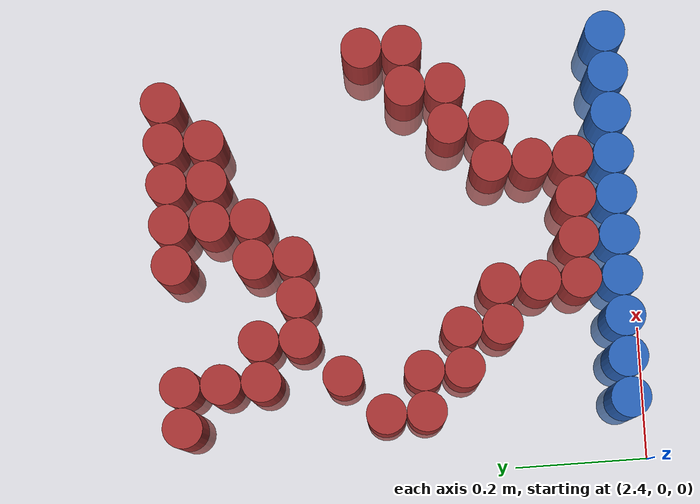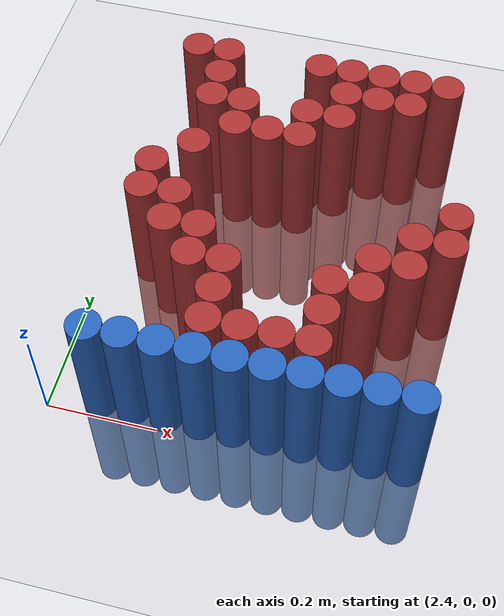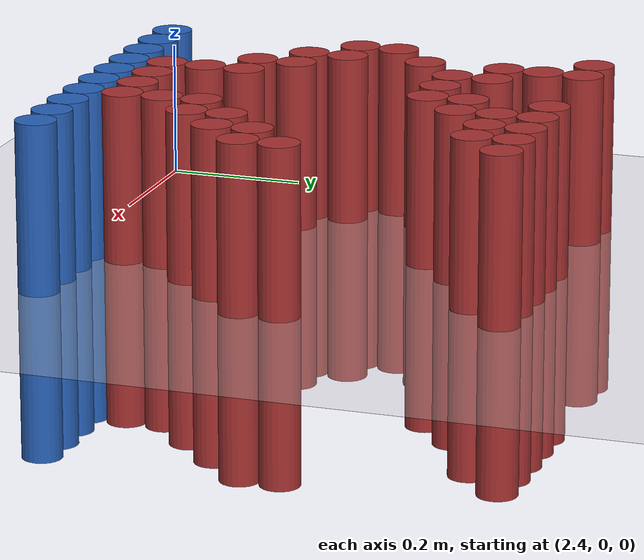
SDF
<sdf version="1.6">
 <world name="default">
  <model name="ground_plane">
   <static>1</static>
   <link name="link">
    <collision name="collision">
     <geometry><plane><normal>0 0 1</normal><size>100 100</size></plane></geometry>
     <surface><friction><ode><mu>100</mu><mu2>50</mu2></ode></friction></surface>
    </collision>
    <visual name="visual">
     <cast_shadows>0</cast_shadows>
     <geometry><plane><normal>0 0 1</normal><size>100 100</size></plane></geometry>
     <material>
      <script><uri>file://media/materials/scripts/gazebo.material</uri><name>Gazebo/Grey</name></script>
     </material>
    </visual>
   </link>
  </model>
  <model name="unit_cylinder_216">
   <static>1</static>
   <pose>2.490000 0.690000 0.000000 0.000000 0.000000 0.000000</pose>
   <link name="link">
    <inertial>
     <mass>1</mass>
     <inertia><ixx>0.145833</ixx><ixy>0</ixy><ixz>0</ixz><iyy>0.145833</iyy><iyz>0</iyz><izz>0.125</izz></inertia>
    </inertial>
    <collision name="collision">
     <geometry><cylinder><radius>0.030000</radius><length>0.5</length></cylinder></geometry>
    </collision>
    <visual name="visual">
     <geometry><cylinder><radius>0.030000</radius><length>0.5</length></cylinder></geometry>
     <material>
      <ambient>0.648000 0.192000 0.192000 1</ambient>
      <diffuse>0.648000 0.192000 0.192000 1</diffuse>
     </material>
     <material>
      <script><name>Gazebo/Grey</name><uri>file://media/materials/scripts/gazebo.material</uri></script>
     </material>
    </visual>
   </link>
  </model>
  <model name="unit_cylinder_217">
   <static>1</static>
   <pose>2.550000 0.690000 0.000000 0.000000 0.000000 0.000000</pose>
   <link name="link">
    <inertial>
     <mass>1</mass>
     <inertia><ixx>0.145833</ixx><ixy>0</ixy><ixz>0</ixz><iyy>0.145833</iyy><iyz>0</iyz><izz>0.125</izz></inertia>
    </inertial>
    <collision name="collision">
     <geometry><cylinder><radius>0.030000</radius><length>0.5</length></cylinder></geometry>
    </collision>
    <visual name="visual">
     <geometry><cylinder><radius>0.030000</radius><length>0.5</length></cylinder></geometry>
     <material>
      <ambient>0.648000 0.192000 0.192000 1</ambient>
      <diffuse>0.648000 0.192000 0.192000 1</diffuse>
     </material>
     <material>
      <script><name>Gazebo/Grey</name><uri>file://media/materials/scripts/gazebo.material</uri></script>
     </material>
    </visual>
   </link>
  </model>
  <model name="unit_cylinder_218">
   <static>1</static>
   <pose>2.730000 0.690000 0.000000 0.000000 0.000000 0.000000</pose>
   <link name="link">
    <inertial>
     <mass>1</mass>
     <inertia><ixx>0.145833</ixx><ixy>0</ixy><ixz>0</ixz><iyy>0.145833</iyy><iyz>0</iyz><izz>0.125</izz></inertia>
    </inertial>
    <collision name="collision">
     <geometry><cylinder><radius>0.030000</radius><length>0.5</length></cylinder></geometry>
    </collision>
    <visual name="visual">
     <geometry><cylinder><radius>0.030000</radius><length>0.5</length></cylinder></geometry>
     <material>
      <ambient>0.648000 0.192000 0.192000 1</ambient>
      <diffuse>0.648000 0.192000 0.192000 1</diffuse>
     </material>
     <material>
      <script><name>Gazebo/Grey</name><uri>file://media/materials/scripts/gazebo.material</uri></script>
     </material>
    </visual>
   </link>
  </model>
  <model name="unit_cylinder_219">
   <static>1</static>
   <pose>2.790000 0.690000 0.000000 0.000000 0.000000 0.000000</pose>
   <link name="link">
    <inertial>
     <mass>1</mass>
     <inertia><ixx>0.145833</ixx><ixy>0</ixy><ixz>0</ixz><iyy>0.145833</iyy><iyz>0</iyz><izz>0.125</izz></inertia>
    </inertial>
    <collision name="collision">
     <geometry><cylinder><radius>0.030000</radius><length>0.5</length></cylinder></geometry>
    </collision>
    <visual name="visual">
     <geometry><cylinder><radius>0.030000</radius><length>0.5</length></cylinder></geometry>
     <material>
      <ambient>0.648000 0.192000 0.192000 1</ambient>
      <diffuse>0.648000 0.192000 0.192000 1</diffuse>
     </material>
     <material>
      <script><name>Gazebo/Grey</name><uri>file://media/materials/scripts/gazebo.material</uri></script>
     </material>
    </visual>
   </link>
  </model>
  <model name="unit_cylinder_220">
   <static>1</static>
   <pose>2.850000 0.690000 0.000000 0.000000 0.000000 0.000000</pose>
   <link name="link">
    <inertial>
     <mass>1</mass>
     <inertia><ixx>0.145833</ixx><ixy>0</ixy><ixz>0</ixz><iyy>0.145833</iyy><iyz>0</iyz><izz>0.125</izz></inertia>
    </inertial>
    <collision name="collision">
     <geometry><cylinder><radius>0.030000</radius><length>0.5</length></cylinder></geometry>
    </collision>
    <visual name="visual">
     <geometry><cylinder><radius>0.030000</radius><length>0.5</length></cylinder></geometry>
     <material>
      <ambient>0.648000 0.192000 0.192000 1</ambient>
      <diffuse>0.648000 0.192000 0.192000 1</diffuse>
     </material>
     <material>
      <script><name>Gazebo/Grey</name><uri>file://media/materials/scripts/gazebo.material</uri></script>
     </material>
    </visual>
   </link>
  </model>
  <model name="unit_cylinder_221">
   <static>1</static>
   <pose>2.910000 0.690000 0.000000 0.000000 0.000000 0.000000</pose>
   <link name="link">
    <inertial>
     <mass>1</mass>
     <inertia><ixx>0.145833</ixx><ixy>0</ixy><ixz>0</ixz><iyy>0.145833</iyy><iyz>0</iyz><izz>0.125</izz></inertia>
    </inertial>
    <collision name="collision">
     <geometry><cylinder><radius>0.030000</radius><length>0.5</length></cylinder></geometry>
    </collision>
    <visual name="visual">
     <geometry><cylinder><radius>0.030000</radius><length>0.5</length></cylinder></geometry>
     <material>
      <ambient>0.648000 0.192000 0.192000 1</ambient>
      <diffuse>0.648000 0.192000 0.192000 1</diffuse>
     </material>
     <material>
      <script><name>Gazebo/Grey</name><uri>file://media/materials/scripts/gazebo.material</uri></script>
     </material>
    </visual>
   </link>
  </model>
  <model name="unit_cylinder_222">
   <static>1</static>
   <pose>2.970000 0.690000 0.000000 0.000000 0.000000 0.000000</pose>
   <link name="link">
    <inertial>
     <mass>1</mass>
     <inertia><ixx>0.145833</ixx><ixy>0</ixy><ixz>0</ixz><iyy>0.145833</iyy><iyz>0</iyz><izz>0.125</izz></inertia>
    </inertial>
    <collision name="collision">
     <geometry><cylinder><radius>0.030000</radius><length>0.5</length></cylinder></geometry>
    </collision>
    <visual name="visual">
     <geometry><cylinder><radius>0.030000</radius><length>0.5</length></cylinder></geometry>
     <material>
      <ambient>0.648000 0.192000 0.192000 1</ambient>
      <diffuse>0.648000 0.192000 0.192000 1</diffuse>
     </material>
     <material>
      <script><name>Gazebo/Grey</name><uri>file://media/materials/scripts/gazebo.material</uri></script>
     </material>
    </visual>
   </link>
  </model>
  <model name="unit_cylinder_226">
   <static>1</static>
   <pose>2.550000 0.630000 0.000000 0.000000 0.000000 0.000000</pose>
   <link name="link">
    <inertial>
     <mass>1</mass>
     <inertia><ixx>0.145833</ixx><ixy>0</ixy><ixz>0</ixz><iyy>0.145833</iyy><iyz>0</iyz><izz>0.125</izz></inertia>
    </inertial>
    <collision name="collision">
     <geometry><cylinder><radius>0.030000</radius><length>0.5</length></cylinder></geometry>
    </collision>
    <visual name="visual">
     <geometry><cylinder><radius>0.030000</radius><length>0.5</length></cylinder></geometry>
     <material>
      <ambient>0.648000 0.192000 0.192000 1</ambient>
      <diffuse>0.648000 0.192000 0.192000 1</diffuse>
     </material>
     <material>
      <script><name>Gazebo/Grey</name><uri>file://media/materials/scripts/gazebo.material</uri></script>
     </material>
    </visual>
   </link>
  </model>
  <model name="unit_cylinder_227">
   <static>1</static>
   <pose>2.790000 0.630000 0.000000 0.000000 0.000000 0.000000</pose>
   <link name="link">
    <inertial>
     <mass>1</mass>
     <inertia><ixx>0.145833</ixx><ixy>0</ixy><ixz>0</ixz><iyy>0.145833</iyy><iyz>0</iyz><izz>0.125</izz></inertia>
    </inertial>
    <collision name="collision">
     <geometry><cylinder><radius>0.030000</radius><length>0.5</length></cylinder></geometry>
    </collision>
    <visual name="visual">
     <geometry><cylinder><radius>0.030000</radius><length>0.5</length></cylinder></geometry>
     <material>
      <ambient>0.648000 0.192000 0.192000 1</ambient>
      <diffuse>0.648000 0.192000 0.192000 1</diffuse>
     </material>
     <material>
      <script><name>Gazebo/Grey</name><uri>file://media/materials/scripts/gazebo.material</uri></script>
     </material>
    </visual>
   </link>
  </model>
  <model name="unit_cylinder_228">
   <static>1</static>
   <pose>2.850000 0.630000 0.000000 0.000000 0.000000 0.000000</pose>
   <link name="link">
    <inertial>
     <mass>1</mass>
     <inertia><ixx>0.145833</ixx><ixy>0</ixy><ixz>0</ixz><iyy>0.145833</iyy><iyz>0</iyz><izz>0.125</izz></inertia>
    </inertial>
    <collision name="collision">
     <geometry><cylinder><radius>0.030000</radius><length>0.5</length></cylinder></geometry>
    </collision>
    <visual name="visual">
     <geometry><cylinder><radius>0.030000</radius><length>0.5</length></cylinder></geometry>
     <material>
      <ambient>0.648000 0.192000 0.192000 1</ambient>
      <diffuse>0.648000 0.192000 0.192000 1</diffuse>
     </material>
     <material>
      <script><name>Gazebo/Grey</name><uri>file://media/materials/scripts/gazebo.material</uri></script>
     </material>
    </visual>
   </link>
  </model>
  <model name="unit_cylinder_229">
   <static>1</static>
   <pose>2.910000 0.630000 0.000000 0.000000 0.000000 0.000000</pose>
   <link name="link">
    <inertial>
     <mass>1</mass>
     <inertia><ixx>0.145833</ixx><ixy>0</ixy><ixz>0</ixz><iyy>0.145833</iyy><iyz>0</iyz><izz>0.125</izz></inertia>
    </inertial>
    <collision name="collision">
     <geometry><cylinder><radius>0.030000</radius><length>0.5</length></cylinder></geometry>
    </collision>
    <visual name="visual">
     <geometry><cylinder><radius>0.030000</radius><length>0.5</length></cylinder></geometry>
     <material>
      <ambient>0.648000 0.192000 0.192000 1</ambient>
      <diffuse>0.648000 0.192000 0.192000 1</diffuse>
     </material>
     <material>
      <script><name>Gazebo/Grey</name><uri>file://media/materials/scripts/gazebo.material</uri></script>
     </material>
    </visual>
   </link>
  </model>
  <model name="unit_cylinder_234">
   <static>1</static>
   <pose>2.550000 0.570000 0.000000 0.000000 0.000000 0.000000</pose>
   <link name="link">
    <inertial>
     <mass>1</mass>
     <inertia><ixx>0.145833</ixx><ixy>0</ixy><ixz>0</ixz><iyy>0.145833</iyy><iyz>0</iyz><izz>0.125</izz></inertia>
    </inertial>
    <collision name="collision">
     <geometry><cylinder><radius>0.030000</radius><length>0.5</length></cylinder></geometry>
    </collision>
    <visual name="visual">
     <geometry><cylinder><radius>0.030000</radius><length>0.5</length></cylinder></geometry>
     <material>
      <ambient>0.648000 0.192000 0.192000 1</ambient>
      <diffuse>0.648000 0.192000 0.192000 1</diffuse>
     </material>
     <material>
      <script><name>Gazebo/Grey</name><uri>file://media/materials/scripts/gazebo.material</uri></script>
     </material>
    </visual>
   </link>
  </model>
  <model name="unit_cylinder_235">
   <static>1</static>
   <pose>2.610000 0.570000 0.000000 0.000000 0.000000 0.000000</pose>
   <link name="link">
    <inertial>
     <mass>1</mass>
     <inertia><ixx>0.145833</ixx><ixy>0</ixy><ixz>0</ixz><iyy>0.145833</iyy><iyz>0</iyz><izz>0.125</izz></inertia>
    </inertial>
    <collision name="collision">
     <geometry><cylinder><radius>0.030000</radius><length>0.5</length></cylinder></geometry>
    </collision>
    <visual name="visual">
     <geometry><cylinder><radius>0.030000</radius><length>0.5</length></cylinder></geometry>
     <material>
      <ambient>0.648000 0.192000 0.192000 1</ambient>
      <diffuse>0.648000 0.192000 0.192000 1</diffuse>
     </material>
     <material>
      <script><name>Gazebo/Grey</name><uri>file://media/materials/scripts/gazebo.material</uri></script>
     </material>
    </visual>
   </link>
  </model>
  <model name="unit_cylinder_236">
   <static>1</static>
   <pose>2.730000 0.570000 0.000000 0.000000 0.000000 0.000000</pose>
   <link name="link">
    <inertial>
     <mass>1</mass>
     <inertia><ixx>0.145833</ixx><ixy>0</ixy><ixz>0</ixz><iyy>0.145833</iyy><iyz>0</iyz><izz>0.125</izz></inertia>
    </inertial>
    <collision name="collision">
     <geometry><cylinder><radius>0.030000</radius><length>0.5</length></cylinder></geometry>
    </collision>
    <visual name="visual">
     <geometry><cylinder><radius>0.030000</radius><length>0.5</length></cylinder></geometry>
     <material>
      <ambient>0.648000 0.192000 0.192000 1</ambient>
      <diffuse>0.648000 0.192000 0.192000 1</diffuse>
     </material>
     <material>
      <script><name>Gazebo/Grey</name><uri>file://media/materials/scripts/gazebo.material</uri></script>
     </material>
    </visual>
   </link>
  </model>
  <model name="unit_cylinder_237">
   <static>1</static>
   <pose>2.790000 0.570000 0.000000 0.000000 0.000000 0.000000</pose>
   <link name="link">
    <inertial>
     <mass>1</mass>
     <inertia><ixx>0.145833</ixx><ixy>0</ixy><ixz>0</ixz><iyy>0.145833</iyy><iyz>0</iyz><izz>0.125</izz></inertia>
    </inertial>
    <collision name="collision">
     <geometry><cylinder><radius>0.030000</radius><length>0.5</length></cylinder></geometry>
    </collision>
    <visual name="visual">
     <geometry><cylinder><radius>0.030000</radius><length>0.5</length></cylinder></geometry>
     <material>
      <ambient>0.648000 0.192000 0.192000 1</ambient>
      <diffuse>0.648000 0.192000 0.192000 1</diffuse>
     </material>
     <material>
      <script><name>Gazebo/Grey</name><uri>file://media/materials/scripts/gazebo.material</uri></script>
     </material>
    </visual>
   </link>
  </model>
  <model name="unit_cylinder_241">
   <static>1</static>
   <pose>2.610000 0.510000 0.000000 0.000000 0.000000 0.000000</pose>
   <link name="link">
    <inertial>
     <mass>1</mass>
     <inertia><ixx>0.145833</ixx><ixy>0</ixy><ixz>0</ixz><iyy>0.145833</iyy><iyz>0</iyz><izz>0.125</izz></inertia>
    </inertial>
    <collision name="collision">
     <geometry><cylinder><radius>0.030000</radius><length>0.5</length></cylinder></geometry>
    </collision>
    <visual name="visual">
     <geometry><cylinder><radius>0.030000</radius><length>0.5</length></cylinder></geometry>
     <material>
      <ambient>0.648000 0.192000 0.192000 1</ambient>
      <diffuse>0.648000 0.192000 0.192000 1</diffuse>
     </material>
     <material>
      <script><name>Gazebo/Grey</name><uri>file://media/materials/scripts/gazebo.material</uri></script>
     </material>
    </visual>
   </link>
  </model>
  <model name="unit_cylinder_242">
   <static>1</static>
   <pose>2.670000 0.510000 0.000000 0.000000 0.000000 0.000000</pose>
   <link name="link">
    <inertial>
     <mass>1</mass>
     <inertia><ixx>0.145833</ixx><ixy>0</ixy><ixz>0</ixz><iyy>0.145833</iyy><iyz>0</iyz><izz>0.125</izz></inertia>
    </inertial>
    <collision name="collision">
     <geometry><cylinder><radius>0.030000</radius><length>0.5</length></cylinder></geometry>
    </collision>
    <visual name="visual">
     <geometry><cylinder><radius>0.030000</radius><length>0.5</length></cylinder></geometry>
     <material>
      <ambient>0.648000 0.192000 0.192000 1</ambient>
      <diffuse>0.648000 0.192000 0.192000 1</diffuse>
     </material>
     <material>
      <script><name>Gazebo/Grey</name><uri>file://media/materials/scripts/gazebo.material</uri></script>
     </material>
    </visual>
   </link>
  </model>
  <model name="unit_cylinder_243">
   <static>1</static>
   <pose>2.730000 0.510000 0.000000 0.000000 0.000000 0.000000</pose>
   <link name="link">
    <inertial>
     <mass>1</mass>
     <inertia><ixx>0.145833</ixx><ixy>0</ixy><ixz>0</ixz><iyy>0.145833</iyy><iyz>0</iyz><izz>0.125</izz></inertia>
    </inertial>
    <collision name="collision">
     <geometry><cylinder><radius>0.030000</radius><length>0.5</length></cylinder></geometry>
    </collision>
    <visual name="visual">
     <geometry><cylinder><radius>0.030000</radius><length>0.5</length></cylinder></geometry>
     <material>
      <ambient>0.648000 0.192000 0.192000 1</ambient>
      <diffuse>0.648000 0.192000 0.192000 1</diffuse>
     </material>
     <material>
      <script><name>Gazebo/Grey</name><uri>file://media/materials/scripts/gazebo.material</uri></script>
     </material>
    </visual>
   </link>
  </model>
  <model name="unit_cylinder_248">
   <static>1</static>
   <pose>2.550000 0.450000 0.000000 0.000000 0.000000 0.000000</pose>
   <link name="link">
    <inertial>
     <mass>1</mass>
     <inertia><ixx>0.145833</ixx><ixy>0</ixy><ixz>0</ixz><iyy>0.145833</iyy><iyz>0</iyz><izz>0.125</izz></inertia>
    </inertial>
    <collision name="collision">
     <geometry><cylinder><radius>0.030000</radius><length>0.5</length></cylinder></geometry>
    </collision>
    <visual name="visual">
     <geometry><cylinder><radius>0.030000</radius><length>0.5</length></cylinder></geometry>
     <material>
      <ambient>0.648000 0.192000 0.192000 1</ambient>
      <diffuse>0.648000 0.192000 0.192000 1</diffuse>
     </material>
     <material>
      <script><name>Gazebo/Grey</name><uri>file://media/materials/scripts/gazebo.material</uri></script>
     </material>
    </visual>
   </link>
  </model>
  <model name="unit_cylinder_259">
   <static>1</static>
   <pose>2.490000 0.390000 0.000000 0.000000 0.000000 0.000000</pose>
   <link name="link">
    <inertial>
     <mass>1</mass>
     <inertia><ixx>0.145833</ixx><ixy>0</ixy><ixz>0</ixz><iyy>0.145833</iyy><iyz>0</iyz><izz>0.125</izz></inertia>
    </inertial>
    <collision name="collision">
     <geometry><cylinder><radius>0.030000</radius><length>0.5</length></cylinder></geometry>
    </collision>
    <visual name="visual">
     <geometry><cylinder><radius>0.030000</radius><length>0.5</length></cylinder></geometry>
     <material>
      <ambient>0.648000 0.192000 0.192000 1</ambient>
      <diffuse>0.648000 0.192000 0.192000 1</diffuse>
     </material>
     <material>
      <script><name>Gazebo/Grey</name><uri>file://media/materials/scripts/gazebo.material</uri></script>
     </material>
    </visual>
   </link>
  </model>
  <model name="unit_cylinder_260">
   <static>1</static>
   <pose>3.030000 0.390000 0.000000 0.000000 0.000000 0.000000</pose>
   <link name="link">
    <inertial>
     <mass>1</mass>
     <inertia><ixx>0.145833</ixx><ixy>0</ixy><ixz>0</ixz><iyy>0.145833</iyy><iyz>0</iyz><izz>0.125</izz></inertia>
    </inertial>
    <collision name="collision">
     <geometry><cylinder><radius>0.030000</radius><length>0.5</length></cylinder></geometry>
    </collision>
    <visual name="visual">
     <geometry><cylinder><radius>0.030000</radius><length>0.5</length></cylinder></geometry>
     <material>
      <ambient>0.648000 0.192000 0.192000 1</ambient>
      <diffuse>0.648000 0.192000 0.192000 1</diffuse>
     </material>
     <material>
      <script><name>Gazebo/Grey</name><uri>file://media/materials/scripts/gazebo.material</uri></script>
     </material>
    </visual>
   </link>
  </model>
  <model name="unit_cylinder_270">
   <static>1</static>
   <pose>2.490000 0.330000 0.000000 0.000000 0.000000 0.000000</pose>
   <link name="link">
    <inertial>
     <mass>1</mass>
     <inertia><ixx>0.145833</ixx><ixy>0</ixy><ixz>0</ixz><iyy>0.145833</iyy><iyz>0</iyz><izz>0.125</izz></inertia>
    </inertial>
    <collision name="collision">
     <geometry><cylinder><radius>0.030000</radius><length>0.5</length></cylinder></geometry>
    </collision>
    <visual name="visual">
     <geometry><cylinder><radius>0.030000</radius><length>0.5</length></cylinder></geometry>
     <material>
      <ambient>0.648000 0.192000 0.192000 1</ambient>
      <diffuse>0.648000 0.192000 0.192000 1</diffuse>
     </material>
     <material>
      <script><name>Gazebo/Grey</name><uri>file://media/materials/scripts/gazebo.material</uri></script>
     </material>
    </visual>
   </link>
  </model>
  <model name="unit_cylinder_271">
   <static>1</static>
   <pose>2.550000 0.330000 0.000000 0.000000 0.000000 0.000000</pose>
   <link name="link">
    <inertial>
     <mass>1</mass>
     <inertia><ixx>0.145833</ixx><ixy>0</ixy><ixz>0</ixz><iyy>0.145833</iyy><iyz>0</iyz><izz>0.125</izz></inertia>
    </inertial>
    <collision name="collision">
     <geometry><cylinder><radius>0.030000</radius><length>0.5</length></cylinder></geometry>
    </collision>
    <visual name="visual">
     <geometry><cylinder><radius>0.030000</radius><length>0.5</length></cylinder></geometry>
     <material>
      <ambient>0.648000 0.192000 0.192000 1</ambient>
      <diffuse>0.648000 0.192000 0.192000 1</diffuse>
     </material>
     <material>
      <script><name>Gazebo/Grey</name><uri>file://media/materials/scripts/gazebo.material</uri></script>
     </material>
    </visual>
   </link>
  </model>
  <model name="unit_cylinder_272">
   <static>1</static>
   <pose>2.970000 0.330000 0.000000 0.000000 0.000000 0.000000</pose>
   <link name="link">
    <inertial>
     <mass>1</mass>
     <inertia><ixx>0.145833</ixx><ixy>0</ixy><ixz>0</ixz><iyy>0.145833</iyy><iyz>0</iyz><izz>0.125</izz></inertia>
    </inertial>
    <collision name="collision">
     <geometry><cylinder><radius>0.030000</radius><length>0.5</length></cylinder></geometry>
    </collision>
    <visual name="visual">
     <geometry><cylinder><radius>0.030000</radius><length>0.5</length></cylinder></geometry>
     <material>
      <ambient>0.648000 0.192000 0.192000 1</ambient>
      <diffuse>0.648000 0.192000 0.192000 1</diffuse>
     </material>
     <material>
      <script><name>Gazebo/Grey</name><uri>file://media/materials/scripts/gazebo.material</uri></script>
     </material>
    </visual>
   </link>
  </model>
  <model name="unit_cylinder_273">
   <static>1</static>
   <pose>3.030000 0.330000 0.000000 0.000000 0.000000 0.000000</pose>
   <link name="link">
    <inertial>
     <mass>1</mass>
     <inertia><ixx>0.145833</ixx><ixy>0</ixy><ixz>0</ixz><iyy>0.145833</iyy><iyz>0</iyz><izz>0.125</izz></inertia>
    </inertial>
    <collision name="collision">
     <geometry><cylinder><radius>0.030000</radius><length>0.5</length></cylinder></geometry>
    </collision>
    <visual name="visual">
     <geometry><cylinder><radius>0.030000</radius><length>0.5</length></cylinder></geometry>
     <material>
      <ambient>0.648000 0.192000 0.192000 1</ambient>
      <diffuse>0.648000 0.192000 0.192000 1</diffuse>
     </material>
     <material>
      <script><name>Gazebo/Grey</name><uri>file://media/materials/scripts/gazebo.material</uri></script>
     </material>
    </visual>
   </link>
  </model>
  <model name="unit_cylinder_281">
   <static>1</static>
   <pose>2.550000 0.270000 0.000000 0.000000 0.000000 0.000000</pose>
   <link name="link">
    <inertial>
     <mass>1</mass>
     <inertia><ixx>0.145833</ixx><ixy>0</ixy><ixz>0</ixz><iyy>0.145833</iyy><iyz>0</iyz><izz>0.125</izz></inertia>
    </inertial>
    <collision name="collision">
     <geometry><cylinder><radius>0.030000</radius><length>0.5</length></cylinder></geometry>
    </collision>
    <visual name="visual">
     <geometry><cylinder><radius>0.030000</radius><length>0.5</length></cylinder></geometry>
     <material>
      <ambient>0.648000 0.192000 0.192000 1</ambient>
      <diffuse>0.648000 0.192000 0.192000 1</diffuse>
     </material>
     <material>
      <script><name>Gazebo/Grey</name><uri>file://media/materials/scripts/gazebo.material</uri></script>
     </material>
    </visual>
   </link>
  </model>
  <model name="unit_cylinder_282">
   <static>1</static>
   <pose>2.610000 0.270000 0.000000 0.000000 0.000000 0.000000</pose>
   <link name="link">
    <inertial>
     <mass>1</mass>
     <inertia><ixx>0.145833</ixx><ixy>0</ixy><ixz>0</ixz><iyy>0.145833</iyy><iyz>0</iyz><izz>0.125</izz></inertia>
    </inertial>
    <collision name="collision">
     <geometry><cylinder><radius>0.030000</radius><length>0.5</length></cylinder></geometry>
    </collision>
    <visual name="visual">
     <geometry><cylinder><radius>0.030000</radius><length>0.5</length></cylinder></geometry>
     <material>
      <ambient>0.648000 0.192000 0.192000 1</ambient>
      <diffuse>0.648000 0.192000 0.192000 1</diffuse>
     </material>
     <material>
      <script><name>Gazebo/Grey</name><uri>file://media/materials/scripts/gazebo.material</uri></script>
     </material>
    </visual>
   </link>
  </model>
  <model name="unit_cylinder_283">
   <static>1</static>
   <pose>2.910000 0.270000 0.000000 0.000000 0.000000 0.000000</pose>
   <link name="link">
    <inertial>
     <mass>1</mass>
     <inertia><ixx>0.145833</ixx><ixy>0</ixy><ixz>0</ixz><iyy>0.145833</iyy><iyz>0</iyz><izz>0.125</izz></inertia>
    </inertial>
    <collision name="collision">
     <geometry><cylinder><radius>0.030000</radius><length>0.5</length></cylinder></geometry>
    </collision>
    <visual name="visual">
     <geometry><cylinder><radius>0.030000</radius><length>0.5</length></cylinder></geometry>
     <material>
      <ambient>0.648000 0.192000 0.192000 1</ambient>
      <diffuse>0.648000 0.192000 0.192000 1</diffuse>
     </material>
     <material>
      <script><name>Gazebo/Grey</name><uri>file://media/materials/scripts/gazebo.material</uri></script>
     </material>
    </visual>
   </link>
  </model>
  <model name="unit_cylinder_284">
   <static>1</static>
   <pose>2.970000 0.270000 0.000000 0.000000 0.000000 0.000000</pose>
   <link name="link">
    <inertial>
     <mass>1</mass>
     <inertia><ixx>0.145833</ixx><ixy>0</ixy><ixz>0</ixz><iyy>0.145833</iyy><iyz>0</iyz><izz>0.125</izz></inertia>
    </inertial>
    <collision name="collision">
     <geometry><cylinder><radius>0.030000</radius><length>0.5</length></cylinder></geometry>
    </collision>
    <visual name="visual">
     <geometry><cylinder><radius>0.030000</radius><length>0.5</length></cylinder></geometry>
     <material>
      <ambient>0.648000 0.192000 0.192000 1</ambient>
      <diffuse>0.648000 0.192000 0.192000 1</diffuse>
     </material>
     <material>
      <script><name>Gazebo/Grey</name><uri>file://media/materials/scripts/gazebo.material</uri></script>
     </material>
    </visual>
   </link>
  </model>
  <model name="unit_cylinder_290">
   <static>1</static>
   <pose>2.610000 0.210000 0.000000 0.000000 0.000000 0.000000</pose>
   <link name="link">
    <inertial>
     <mass>1</mass>
     <inertia><ixx>0.145833</ixx><ixy>0</ixy><ixz>0</ixz><iyy>0.145833</iyy><iyz>0</iyz><izz>0.125</izz></inertia>
    </inertial>
    <collision name="collision">
     <geometry><cylinder><radius>0.030000</radius><length>0.5</length></cylinder></geometry>
    </collision>
    <visual name="visual">
     <geometry><cylinder><radius>0.030000</radius><length>0.5</length></cylinder></geometry>
     <material>
      <ambient>0.648000 0.192000 0.192000 1</ambient>
      <diffuse>0.648000 0.192000 0.192000 1</diffuse>
     </material>
     <material>
      <script><name>Gazebo/Grey</name><uri>file://media/materials/scripts/gazebo.material</uri></script>
     </material>
    </visual>
   </link>
  </model>
  <model name="unit_cylinder_291">
   <static>1</static>
   <pose>2.670000 0.210000 0.000000 0.000000 0.000000 0.000000</pose>
   <link name="link">
    <inertial>
     <mass>1</mass>
     <inertia><ixx>0.145833</ixx><ixy>0</ixy><ixz>0</ixz><iyy>0.145833</iyy><iyz>0</iyz><izz>0.125</izz></inertia>
    </inertial>
    <collision name="collision">
     <geometry><cylinder><radius>0.030000</radius><length>0.5</length></cylinder></geometry>
    </collision>
    <visual name="visual">
     <geometry><cylinder><radius>0.030000</radius><length>0.5</length></cylinder></geometry>
     <material>
      <ambient>0.648000 0.192000 0.192000 1</ambient>
      <diffuse>0.648000 0.192000 0.192000 1</diffuse>
     </material>
     <material>
      <script><name>Gazebo/Grey</name><uri>file://media/materials/scripts/gazebo.material</uri></script>
     </material>
    </visual>
   </link>
  </model>
  <model name="unit_cylinder_292">
   <static>1</static>
   <pose>2.850000 0.210000 0.000000 0.000000 0.000000 0.000000</pose>
   <link name="link">
    <inertial>
     <mass>1</mass>
     <inertia><ixx>0.145833</ixx><ixy>0</ixy><ixz>0</ixz><iyy>0.145833</iyy><iyz>0</iyz><izz>0.125</izz></inertia>
    </inertial>
    <collision name="collision">
     <geometry><cylinder><radius>0.030000</radius><length>0.5</length></cylinder></geometry>
    </collision>
    <visual name="visual">
     <geometry><cylinder><radius>0.030000</radius><length>0.5</length></cylinder></geometry>
     <material>
      <ambient>0.648000 0.192000 0.192000 1</ambient>
      <diffuse>0.648000 0.192000 0.192000 1</diffuse>
     </material>
     <material>
      <script><name>Gazebo/Grey</name><uri>file://media/materials/scripts/gazebo.material</uri></script>
     </material>
    </visual>
   </link>
  </model>
  <model name="unit_cylinder_293">
   <static>1</static>
   <pose>2.910000 0.210000 0.000000 0.000000 0.000000 0.000000</pose>
   <link name="link">
    <inertial>
     <mass>1</mass>
     <inertia><ixx>0.145833</ixx><ixy>0</ixy><ixz>0</ixz><iyy>0.145833</iyy><iyz>0</iyz><izz>0.125</izz></inertia>
    </inertial>
    <collision name="collision">
     <geometry><cylinder><radius>0.030000</radius><length>0.5</length></cylinder></geometry>
    </collision>
    <visual name="visual">
     <geometry><cylinder><radius>0.030000</radius><length>0.5</length></cylinder></geometry>
     <material>
      <ambient>0.648000 0.192000 0.192000 1</ambient>
      <diffuse>0.648000 0.192000 0.192000 1</diffuse>
     </material>
     <material>
      <script><name>Gazebo/Grey</name><uri>file://media/materials/scripts/gazebo.material</uri></script>
     </material>
    </visual>
   </link>
  </model>
  <model name="unit_cylinder_298">
   <static>1</static>
   <pose>2.670000 0.150000 0.000000 0.000000 0.000000 0.000000</pose>
   <link name="link">
    <inertial>
     <mass>1</mass>
     <inertia><ixx>0.145833</ixx><ixy>0</ixy><ixz>0</ixz><iyy>0.145833</iyy><iyz>0</iyz><izz>0.125</izz></inertia>
    </inertial>
    <collision name="collision">
     <geometry><cylinder><radius>0.030000</radius><length>0.5</length></cylinder></geometry>
    </collision>
    <visual name="visual">
     <geometry><cylinder><radius>0.030000</radius><length>0.5</length></cylinder></geometry>
     <material>
      <ambient>0.648000 0.192000 0.192000 1</ambient>
      <diffuse>0.648000 0.192000 0.192000 1</diffuse>
     </material>
     <material>
      <script><name>Gazebo/Grey</name><uri>file://media/materials/scripts/gazebo.material</uri></script>
     </material>
    </visual>
   </link>
  </model>
  <model name="unit_cylinder_299">
   <static>1</static>
   <pose>2.850000 0.150000 0.000000 0.000000 0.000000 0.000000</pose>
   <link name="link">
    <inertial>
     <mass>1</mass>
     <inertia><ixx>0.145833</ixx><ixy>0</ixy><ixz>0</ixz><iyy>0.145833</iyy><iyz>0</iyz><izz>0.125</izz></inertia>
    </inertial>
    <collision name="collision">
     <geometry><cylinder><radius>0.030000</radius><length>0.5</length></cylinder></geometry>
    </collision>
    <visual name="visual">
     <geometry><cylinder><radius>0.030000</radius><length>0.5</length></cylinder></geometry>
     <material>
      <ambient>0.648000 0.192000 0.192000 1</ambient>
      <diffuse>0.648000 0.192000 0.192000 1</diffuse>
     </material>
     <material>
      <script><name>Gazebo/Grey</name><uri>file://media/materials/scripts/gazebo.material</uri></script>
     </material>
    </visual>
   </link>
  </model>
  <model name="unit_cylinder_306">
   <static>1</static>
   <pose>2.670000 0.090000 0.000000 0.000000 0.000000 0.000000</pose>
   <link name="link">
    <inertial>
     <mass>1</mass>
     <inertia><ixx>0.145833</ixx><ixy>0</ixy><ixz>0</ixz><iyy>0.145833</iyy><iyz>0</iyz><izz>0.125</izz></inertia>
    </inertial>
    <collision name="collision">
     <geometry><cylinder><radius>0.030000</radius><length>0.5</length></cylinder></geometry>
    </collision>
    <visual name="visual">
     <geometry><cylinder><radius>0.030000</radius><length>0.5</length></cylinder></geometry>
     <material>
      <ambient>0.648000 0.192000 0.192000 1</ambient>
      <diffuse>0.648000 0.192000 0.192000 1</diffuse>
     </material>
     <material>
      <script><name>Gazebo/Grey</name><uri>file://media/materials/scripts/gazebo.material</uri></script>
     </material>
    </visual>
   </link>
  </model>
  <model name="unit_cylinder_307">
   <static>1</static>
   <pose>2.730000 0.090000 0.000000 0.000000 0.000000 0.000000</pose>
   <link name="link">
    <inertial>
     <mass>1</mass>
     <inertia><ixx>0.145833</ixx><ixy>0</ixy><ixz>0</ixz><iyy>0.145833</iyy><iyz>0</iyz><izz>0.125</izz></inertia>
    </inertial>
    <collision name="collision">
     <geometry><cylinder><radius>0.030000</radius><length>0.5</length></cylinder></geometry>
    </collision>
    <visual name="visual">
     <geometry><cylinder><radius>0.030000</radius><length>0.5</length></cylinder></geometry>
     <material>
      <ambient>0.648000 0.192000 0.192000 1</ambient>
      <diffuse>0.648000 0.192000 0.192000 1</diffuse>
     </material>
     <material>
      <script><name>Gazebo/Grey</name><uri>file://media/materials/scripts/gazebo.material</uri></script>
     </material>
    </visual>
   </link>
  </model>
  <model name="unit_cylinder_308">
   <static>1</static>
   <pose>2.790000 0.090000 0.000000 0.000000 0.000000 0.000000</pose>
   <link name="link">
    <inertial>
     <mass>1</mass>
     <inertia><ixx>0.145833</ixx><ixy>0</ixy><ixz>0</ixz><iyy>0.145833</iyy><iyz>0</iyz><izz>0.125</izz></inertia>
    </inertial>
    <collision name="collision">
     <geometry><cylinder><radius>0.030000</radius><length>0.5</length></cylinder></geometry>
    </collision>
    <visual name="visual">
     <geometry><cylinder><radius>0.030000</radius><length>0.5</length></cylinder></geometry>
     <material>
      <ambient>0.648000 0.192000 0.192000 1</ambient>
      <diffuse>0.648000 0.192000 0.192000 1</diffuse>
     </material>
     <material>
      <script><name>Gazebo/Grey</name><uri>file://media/materials/scripts/gazebo.material</uri></script>
     </material>
    </visual>
   </link>
  </model>
  <model name="unit_cylinder_309">
   <static>1</static>
   <pose>2.850000 0.090000 0.000000 0.000000 0.000000 0.000000</pose>
   <link name="link">
    <inertial>
     <mass>1</mass>
     <inertia><ixx>0.145833</ixx><ixy>0</ixy><ixz>0</ixz><iyy>0.145833</iyy><iyz>0</iyz><izz>0.125</izz></inertia>
    </inertial>
    <collision name="collision">
     <geometry><cylinder><radius>0.030000</radius><length>0.5</length></cylinder></geometry>
    </collision>
    <visual name="visual">
     <geometry><cylinder><radius>0.030000</radius><length>0.5</length></cylinder></geometry>
     <material>
      <ambient>0.648000 0.192000 0.192000 1</ambient>
      <diffuse>0.648000 0.192000 0.192000 1</diffuse>
     </material>
     <material>
      <script><name>Gazebo/Grey</name><uri>file://media/materials/scripts/gazebo.material</uri></script>
     </material>
    </visual>
   </link>
  </model>
  <model name="unit_cylinder_324">
   <static>1</static>
   <pose>2.490000 0.030000 0.000000 0.000000 0.000000 0.000000</pose>
   <link name="link">
    <inertial>
     <mass>1</mass>
     <inertia><ixx>0.145833</ixx><ixy>0</ixy><ixz>0</ixz><iyy>0.145833</iyy><iyz>0</iyz><izz>0.125</izz></inertia>
    </inertial>
    <collision name="collision">
     <geometry><cylinder><radius>0.030000</radius><length>0.5</length></cylinder></geometry>
    </collision>
    <visual name="visual">
     <geometry><cylinder><radius>0.030000</radius><length>0.5</length></cylinder></geometry>
     <material>
      <ambient>0.152000 0.379000 0.720000 1</ambient>
      <diffuse>0.152000 0.379000 0.720000 1</diffuse>
     </material>
     <material>
      <script><name>Gazebo/Grey</name><uri>file://media/materials/scripts/gazebo.material</uri></script>
     </material>
    </visual>
   </link>
  </model>
  <model name="unit_cylinder_325">
   <static>1</static>
   <pose>2.550000 0.030000 0.000000 0.000000 0.000000 0.000000</pose>
   <link name="link">
    <inertial>
     <mass>1</mass>
     <inertia><ixx>0.145833</ixx><ixy>0</ixy><ixz>0</ixz><iyy>0.145833</iyy><iyz>0</iyz><izz>0.125</izz></inertia>
    </inertial>
    <collision name="collision">
     <geometry><cylinder><radius>0.030000</radius><length>0.5</length></cylinder></geometry>
    </collision>
    <visual name="visual">
     <geometry><cylinder><radius>0.030000</radius><length>0.5</length></cylinder></geometry>
     <material>
      <ambient>0.152000 0.379000 0.720000 1</ambient>
      <diffuse>0.152000 0.379000 0.720000 1</diffuse>
     </material>
     <material>
      <script><name>Gazebo/Grey</name><uri>file://media/materials/scripts/gazebo.material</uri></script>
     </material>
    </visual>
   </link>
  </model>
  <model name="unit_cylinder_326">
   <static>1</static>
   <pose>2.610000 0.030000 0.000000 0.000000 0.000000 0.000000</pose>
   <link name="link">
    <inertial>
     <mass>1</mass>
     <inertia><ixx>0.145833</ixx><ixy>0</ixy><ixz>0</ixz><iyy>0.145833</iyy><iyz>0</iyz><izz>0.125</izz></inertia>
    </inertial>
    <collision name="collision">
     <geometry><cylinder><radius>0.030000</radius><length>0.5</length></cylinder></geometry>
    </collision>
    <visual name="visual">
     <geometry><cylinder><radius>0.030000</radius><length>0.5</length></cylinder></geometry>
     <material>
      <ambient>0.152000 0.379000 0.720000 1</ambient>
      <diffuse>0.152000 0.379000 0.720000 1</diffuse>
     </material>
     <material>
      <script><name>Gazebo/Grey</name><uri>file://media/materials/scripts/gazebo.material</uri></script>
     </material>
    </visual>
   </link>
  </model>
  <model name="unit_cylinder_327">
   <static>1</static>
   <pose>2.670000 0.030000 0.000000 0.000000 0.000000 0.000000</pose>
   <link name="link">
    <inertial>
     <mass>1</mass>
     <inertia><ixx>0.145833</ixx><ixy>0</ixy><ixz>0</ixz><iyy>0.145833</iyy><iyz>0</iyz><izz>0.125</izz></inertia>
    </inertial>
    <collision name="collision">
     <geometry><cylinder><radius>0.030000</radius><length>0.5</length></cylinder></geometry>
    </collision>
    <visual name="visual">
     <geometry><cylinder><radius>0.030000</radius><length>0.5</length></cylinder></geometry>
     <material>
      <ambient>0.152000 0.379000 0.720000 1</ambient>
      <diffuse>0.152000 0.379000 0.720000 1</diffuse>
     </material>
     <material>
      <script><name>Gazebo/Grey</name><uri>file://media/materials/scripts/gazebo.material</uri></script>
     </material>
    </visual>
   </link>
  </model>
  <model name="unit_cylinder_328">
   <static>1</static>
   <pose>2.730000 0.030000 0.000000 0.000000 0.000000 0.000000</pose>
   <link name="link">
    <inertial>
     <mass>1</mass>
     <inertia><ixx>0.145833</ixx><ixy>0</ixy><ixz>0</ixz><iyy>0.145833</iyy><iyz>0</iyz><izz>0.125</izz></inertia>
    </inertial>
    <collision name="collision">
     <geometry><cylinder><radius>0.030000</radius><length>0.5</length></cylinder></geometry>
    </collision>
    <visual name="visual">
     <geometry><cylinder><radius>0.030000</radius><length>0.5</length></cylinder></geometry>
     <material>
      <ambient>0.152000 0.379000 0.720000 1</ambient>
      <diffuse>0.152000 0.379000 0.720000 1</diffuse>
     </material>
     <material>
      <script><name>Gazebo/Grey</name><uri>file://media/materials/scripts/gazebo.material</uri></script>
     </material>
    </visual>
   </link>
  </model>
  <model name="unit_cylinder_329">
   <static>1</static>
   <pose>2.790000 0.030000 0.000000 0.000000 0.000000 0.000000</pose>
   <link name="link">
    <inertial>
     <mass>1</mass>
     <inertia><ixx>0.145833</ixx><ixy>0</ixy><ixz>0</ixz><iyy>0.145833</iyy><iyz>0</iyz><izz>0.125</izz></inertia>
    </inertial>
    <collision name="collision">
     <geometry><cylinder><radius>0.030000</radius><length>0.5</length></cylinder></geometry>
    </collision>
    <visual name="visual">
     <geometry><cylinder><radius>0.030000</radius><length>0.5</length></cylinder></geometry>
     <material>
      <ambient>0.152000 0.379000 0.720000 1</ambient>
      <diffuse>0.152000 0.379000 0.720000 1</diffuse>
     </material>
     <material>
      <script><name>Gazebo/Grey</name><uri>file://media/materials/scripts/gazebo.material</uri></script>
     </material>
    </visual>
   </link>
  </model>
  <model name="unit_cylinder_330">
   <static>1</static>
   <pose>2.850000 0.030000 0.000000 0.000000 0.000000 0.000000</pose>
   <link name="link">
    <inertial>
     <mass>1</mass>
     <inertia><ixx>0.145833</ixx><ixy>0</ixy><ixz>0</ixz><iyy>0.145833</iyy><iyz>0</iyz><izz>0.125</izz></inertia>
    </inertial>
    <collision name="collision">
     <geometry><cylinder><radius>0.030000</radius><length>0.5</length></cylinder></geometry>
    </collision>
    <visual name="visual">
     <geometry><cylinder><radius>0.030000</radius><length>0.5</length></cylinder></geometry>
     <material>
      <ambient>0.152000 0.379000 0.720000 1</ambient>
      <diffuse>0.152000 0.379000 0.720000 1</diffuse>
     </material>
     <material>
      <script><name>Gazebo/Grey</name><uri>file://media/materials/scripts/gazebo.material</uri></script>
     </material>
    </visual>
   </link>
  </model>
  <model name="unit_cylinder_331">
   <static>1</static>
   <pose>2.910000 0.030000 0.000000 0.000000 0.000000 0.000000</pose>
   <link name="link">
    <inertial>
     <mass>1</mass>
     <inertia><ixx>0.145833</ixx><ixy>0</ixy><ixz>0</ixz><iyy>0.145833</iyy><iyz>0</iyz><izz>0.125</izz></inertia>
    </inertial>
    <collision name="collision">
     <geometry><cylinder><radius>0.030000</radius><length>0.5</length></cylinder></geometry>
    </collision>
    <visual name="visual">
     <geometry><cylinder><radius>0.030000</radius><length>0.5</length></cylinder></geometry>
     <material>
      <ambient>0.152000 0.379000 0.720000 1</ambient>
      <diffuse>0.152000 0.379000 0.720000 1</diffuse>
     </material>
     <material>
      <script><name>Gazebo/Grey</name><uri>file://media/materials/scripts/gazebo.material</uri></script>
     </material>
    </visual>
   </link>
  </model>
  <model name="unit_cylinder_332">
   <static>1</static>
   <pose>2.970000 0.030000 0.000000 0.000000 0.000000 0.000000</pose>
   <link name="link">
    <inertial>
     <mass>1</mass>
     <inertia><ixx>0.145833</ixx><ixy>0</ixy><ixz>0</ixz><iyy>0.145833</iyy><iyz>0</iyz><izz>0.125</izz></inertia>
    </inertial>
    <collision name="collision">
     <geometry><cylinder><radius>0.030000</radius><length>0.5</length></cylinder></geometry>
    </collision>
    <visual name="visual">
     <geometry><cylinder><radius>0.030000</radius><length>0.5</length></cylinder></geometry>
     <material>
      <ambient>0.152000 0.379000 0.720000 1</ambient>
      <diffuse>0.152000 0.379000 0.720000 1</diffuse>
     </material>
     <material>
      <script><name>Gazebo/Grey</name><uri>file://media/materials/scripts/gazebo.material</uri></script>
     </material>
    </visual>
   </link>
  </model>
  <model name="unit_cylinder_333">
   <static>1</static>
   <pose>3.030000 0.030000 0.000000 0.000000 0.000000 0.000000</pose>
   <link name="link">
    <inertial>
     <mass>1</mass>
     <inertia><ixx>0.145833</ixx><ixy>0</ixy><ixz>0</ixz><iyy>0.145833</iyy><iyz>0</iyz><izz>0.125</izz></inertia>
    </inertial>
    <collision name="collision">
     <geometry><cylinder><radius>0.030000</radius><length>0.5</length></cylinder></geometry>
    </collision>
    <visual name="visual">
     <geometry><cylinder><radius>0.030000</radius><length>0.5</length></cylinder></geometry>
     <material>
      <ambient>0.152000 0.379000 0.720000 1</ambient>
      <diffuse>0.152000 0.379000 0.720000 1</diffuse>
     </material>
     <material>
      <script><name>Gazebo/Grey</name><uri>file://media/materials/scripts/gazebo.material</uri></script>
     </material>
    </visual>
   </link>
  </model>
 </world>
</sdf>
